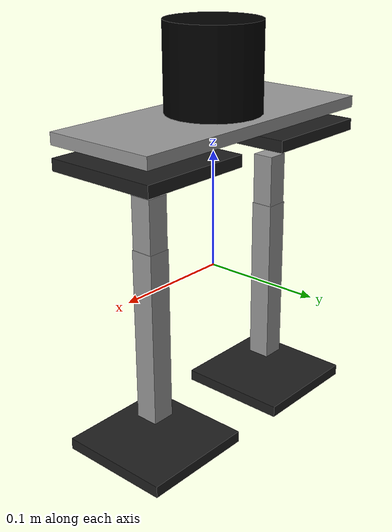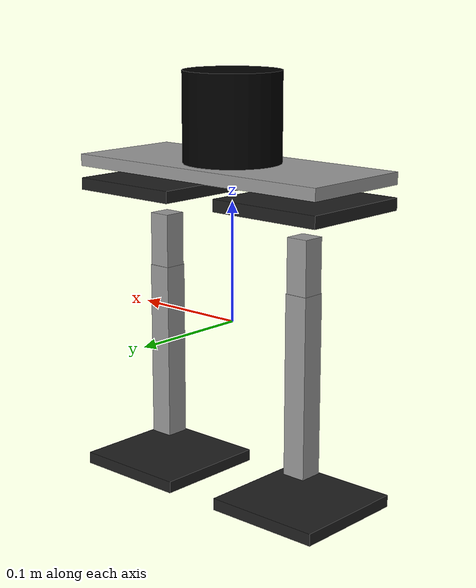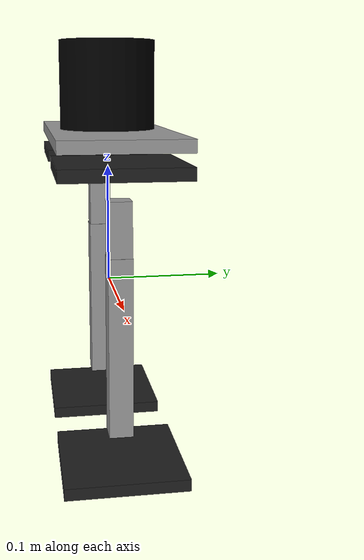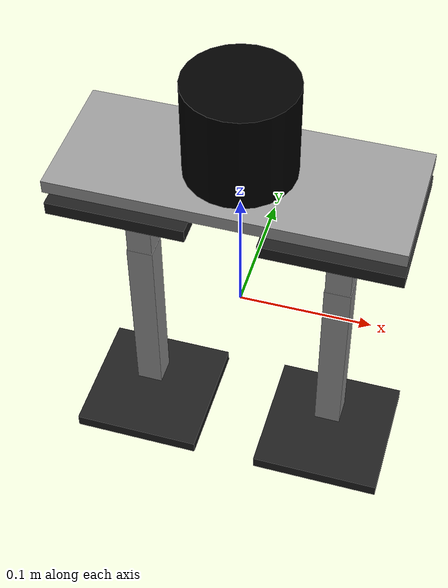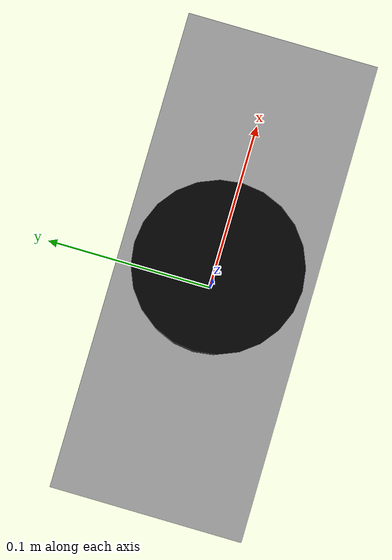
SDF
<?xml version='1.0'?>
<sdf version='1.7'>
  <model name='hyrecro_B_serial_ouster'>
    <link name='foot_A'>
      <inertial>
        <mass>1</mass>
        <inertia>
          <ixx>0.166667</ixx>
          <ixy>0</ixy>
          <ixz>0</ixz>
          <iyy>0.166667</iyy>
          <iyz>0</iyz>
          <izz>0.166667</izz>
        </inertia>
        <pose>0 0 0 0 -0 0</pose>
      </inertial>
      <pose>-0.075 -0 -0.138333 0 -0 0</pose>
      <gravity>1</gravity>
      <self_collide>0</self_collide>
      <kinematic>0</kinematic>
      <enable_wind>0</enable_wind>
      <visual name='visual'>
        <pose>0 0 0 0 -0 0</pose>
        <geometry>
          <box>
            <size>0.1 0.1 0.01</size>
          </box>
        </geometry>
        <material>
          <lighting>1</lighting>
          <script>
            <uri>file://media/materials/scripts/gazebo.material</uri>
            <name>Gazebo/Black</name>
          </script>
          <shader type='pixel'>
            <normal_map>__default__</normal_map>
          </shader>
          <ambient>0 0 0 1</ambient>
          <diffuse>0.7 0.7 0.7 1</diffuse>
          <specular>0.01 0.01 0.01 1</specular>
          <emissive>0 0 0 1</emissive>
        </material>
        <transparency>0</transparency>
        <cast_shadows>1</cast_shadows>
      </visual>
      <collision name='collision'>
        <laser_retro>0</laser_retro>
        <max_contacts>10</max_contacts>
        <pose>0 0 0 0 -0 0</pose>
        <geometry>
          <box>
            <size>0.1 0.1 0.01</size>
          </box>
        </geometry>
        <surface>
          <friction>
            <ode>
              <mu>1</mu>
              <mu2>1</mu2>
              <fdir1>0 0 0</fdir1>
              <slip1>0</slip1>
              <slip2>0</slip2>
            </ode>
            <torsional>
              <coefficient>1</coefficient>
              <patch_radius>0</patch_radius>
              <surface_radius>0</surface_radius>
              <use_patch_radius>1</use_patch_radius>
              <ode>
                <slip>0</slip>
              </ode>
            </torsional>
          </friction>
          <bounce>
            <restitution_coefficient>0</restitution_coefficient>
            <threshold>1e+06</threshold>
          </bounce>
          <contact>
            <collide_without_contact>0</collide_without_contact>
            <collide_without_contact_bitmask>1</collide_without_contact_bitmask>
            <collide_bitmask>1</collide_bitmask>
            <ode>
              <soft_cfm>0</soft_cfm>
              <soft_erp>0.2</soft_erp>
              <kp>1e+13</kp>
              <kd>1</kd>
              <max_vel>0.01</max_vel>
              <min_depth>0</min_depth>
            </ode>
            <bullet>
              <split_impulse>1</split_impulse>
              <split_impulse_penetration_threshold>-0.01</split_impulse_penetration_threshold>
              <soft_cfm>0</soft_cfm>
              <soft_erp>0.2</soft_erp>
              <kp>1e+13</kp>
              <kd>1</kd>
            </bullet>
          </contact>
        </surface>
      </collision>
    </link>
    <link name='foot_B'>
      <inertial>
        <mass>1</mass>
        <inertia>
          <ixx>0.166667</ixx>
          <ixy>0</ixy>
          <ixz>0</ixz>
          <iyy>0.166667</iyy>
          <iyz>0</iyz>
          <izz>0.166667</izz>
        </inertia>
        <pose>0 0 0 0 -0 0</pose>
      </inertial>
      <pose>0.075 0 -0.138333 0 -0 0</pose>
      <gravity>1</gravity>
      <self_collide>0</self_collide>
      <kinematic>0</kinematic>
      <enable_wind>0</enable_wind>
      <visual name='visual'>
        <pose>0 0 0 0 -0 0</pose>
        <geometry>
          <box>
            <size>0.1 0.1 0.01</size>
          </box>
        </geometry>
        <material>
          <lighting>1</lighting>
          <script>
            <uri>file://media/materials/scripts/gazebo.material</uri>
            <name>Gazebo/Black</name>
          </script>
          <shader type='pixel'>
            <normal_map>__default__</normal_map>
          </shader>
          <ambient>0.961 0.475 0 1</ambient>
          <diffuse>0.7 0.7 0.7 1</diffuse>
          <specular>0.01 0.01 0.01 1</specular>
          <emissive>0 0 0 1</emissive>
        </material>
        <transparency>0</transparency>
        <cast_shadows>1</cast_shadows>
      </visual>
      <collision name='collision'>
        <laser_retro>0</laser_retro>
        <max_contacts>10</max_contacts>
        <pose>0 0 0 0 -0 0</pose>
        <geometry>
          <box>
            <size>0.1 0.1 0.01</size>
          </box>
        </geometry>
        <surface>
          <friction>
            <ode>
              <mu>1</mu>
              <mu2>1</mu2>
              <fdir1>0 0 0</fdir1>
              <slip1>0</slip1>
              <slip2>0</slip2>
            </ode>
            <torsional>
              <coefficient>1</coefficient>
              <patch_radius>0</patch_radius>
              <surface_radius>0</surface_radius>
              <use_patch_radius>1</use_patch_radius>
              <ode>
                <slip>0</slip>
              </ode>
            </torsional>
          </friction>
          <bounce>
            <restitution_coefficient>0</restitution_coefficient>
            <threshold>1e+06</threshold>
          </bounce>
          <contact>
            <collide_without_contact>0</collide_without_contact>
            <collide_without_contact_bitmask>1</collide_without_contact_bitmask>
            <collide_bitmask>1</collide_bitmask>
            <ode>
              <soft_cfm>0</soft_cfm>
              <soft_erp>0.2</soft_erp>
              <kp>1e+13</kp>
              <kd>1</kd>
              <max_vel>0.01</max_vel>
              <min_depth>0</min_depth>
            </ode>
            <bullet>
              <split_impulse>1</split_impulse>
              <split_impulse_penetration_threshold>-0.01</split_impulse_penetration_threshold>
              <soft_cfm>0</soft_cfm>
              <soft_erp>0.2</soft_erp>
              <kp>1e+13</kp>
              <kd>1</kd>
            </bullet>
          </contact>
        </surface>
      </collision>
    </link>
    <link name='hip'>
      <inertial>
        <mass>1</mass>
        <inertia>
          <ixx>0.166667</ixx>
          <ixy>0</ixy>
          <ixz>0</ixz>
          <iyy>0.166667</iyy>
          <iyz>0</iyz>
          <izz>0.166667</izz>
        </inertia>
        <pose>0 0 0 0 -0 0</pose>
      </inertial>
      <pose>0 -0 0.126667 0 -0 0</pose>
      <gravity>1</gravity>
      <self_collide>0</self_collide>
      <kinematic>0</kinematic>
      <enable_wind>0</enable_wind>
      <visual name='visual'>
        <pose>0 0 0 0 -0 0</pose>
        <geometry>
          <box>
            <size>0.25 0.1 0.01</size>
          </box>
        </geometry>
        <material>
          <lighting>1</lighting>
          <script>
            <uri>file://media/materials/scripts/gazebo.material</uri>
            <name>Gazebo/Grey</name>
          </script>
          <shader type='pixel'>
            <normal_map>__default__</normal_map>
          </shader>
          <ambient>0.729 0.741 0.714 1</ambient>
          <diffuse>0.7 0.7 0.7 1</diffuse>
          <specular>0.01 0.01 0.01 1</specular>
          <emissive>0 0 0 1</emissive>
        </material>
        <transparency>0</transparency>
        <cast_shadows>1</cast_shadows>
      </visual>
      <collision name='collision'>
        <laser_retro>0</laser_retro>
        <max_contacts>10</max_contacts>
        <pose>0 0 0 0 -0 0</pose>
        <geometry>
          <box>
            <size>0.25 0.1 0.01</size>
          </box>
        </geometry>
        <surface>
          <friction>
            <ode>
              <mu>1</mu>
              <mu2>1</mu2>
              <fdir1>0 0 0</fdir1>
              <slip1>0</slip1>
              <slip2>0</slip2>
            </ode>
            <torsional>
              <coefficient>1</coefficient>
              <patch_radius>0</patch_radius>
              <surface_radius>0</surface_radius>
              <use_patch_radius>1</use_patch_radius>
              <ode>
                <slip>0</slip>
              </ode>
            </torsional>
          </friction>
          <bounce>
            <restitution_coefficient>0</restitution_coefficient>
            <threshold>1e+06</threshold>
          </bounce>
          <contact>
            <collide_without_contact>0</collide_without_contact>
            <collide_without_contact_bitmask>1</collide_without_contact_bitmask>
            <collide_bitmask>1</collide_bitmask>
            <ode>
              <soft_cfm>0</soft_cfm>
              <soft_erp>0.2</soft_erp>
              <kp>1e+13</kp>
              <kd>1</kd>
              <max_vel>0.01</max_vel>
              <min_depth>0</min_depth>
            </ode>
            <bullet>
              <split_impulse>1</split_impulse>
              <split_impulse_penetration_threshold>-0.01</split_impulse_penetration_threshold>
              <soft_cfm>0</soft_cfm>
              <soft_erp>0.2</soft_erp>
              <kp>1e+13</kp>
              <kd>1</kd>
            </bullet>
          </contact>
        </surface>
      </collision>
    </link>
    <link name='hip_A'>
      <inertial>
        <mass>1</mass>
        <inertia>
          <ixx>0.166667</ixx>
          <ixy>0</ixy>
          <ixz>0</ixz>
          <iyy>0.166667</iyy>
          <iyz>0</iyz>
          <izz>0.166667</izz>
        </inertia>
        <pose>0 0 0 0 -0 0</pose>
      </inertial>
      <pose>-0.075 0 0.106667 0 -0 0</pose>
      <gravity>1</gravity>
      <self_collide>0</self_collide>
      <kinematic>0</kinematic>
      <enable_wind>0</enable_wind>
      <visual name='visual'>
        <pose>0 0 0 0 -0 0</pose>
        <geometry>
          <box>
            <size>0.1 0.1 0.01</size>
          </box>
        </geometry>
        <material>
          <lighting>1</lighting>
          <script>
            <uri>file://media/materials/scripts/gazebo.material</uri>
            <name>Gazebo/Black</name>
          </script>
          <shader type='pixel'>
            <normal_map>__default__</normal_map>
          </shader>
          <ambient>0 0 0 1</ambient>
          <diffuse>0.7 0.7 0.7 1</diffuse>
          <specular>0.01 0.01 0.01 1</specular>
          <emissive>0 0 0 1</emissive>
        </material>
        <transparency>0</transparency>
        <cast_shadows>1</cast_shadows>
      </visual>
      <collision name='collision'>
        <laser_retro>0</laser_retro>
        <max_contacts>10</max_contacts>
        <pose>0 0 0 0 -0 0</pose>
        <geometry>
          <box>
            <size>0.1 0.1 0.01</size>
          </box>
        </geometry>
        <surface>
          <friction>
            <ode>
              <mu>1</mu>
              <mu2>1</mu2>
              <fdir1>0 0 0</fdir1>
              <slip1>0</slip1>
              <slip2>0</slip2>
            </ode>
            <torsional>
              <coefficient>1</coefficient>
              <patch_radius>0</patch_radius>
              <surface_radius>0</surface_radius>
              <use_patch_radius>1</use_patch_radius>
              <ode>
                <slip>0</slip>
              </ode>
            </torsional>
          </friction>
          <bounce>
            <restitution_coefficient>0</restitution_coefficient>
            <threshold>1e+06</threshold>
          </bounce>
          <contact>
            <collide_without_contact>0</collide_without_contact>
            <collide_without_contact_bitmask>1</collide_without_contact_bitmask>
            <collide_bitmask>1</collide_bitmask>
            <ode>
              <soft_cfm>0</soft_cfm>
              <soft_erp>0.2</soft_erp>
              <kp>1e+13</kp>
              <kd>1</kd>
              <max_vel>0.01</max_vel>
              <min_depth>0</min_depth>
            </ode>
            <bullet>
              <split_impulse>1</split_impulse>
              <split_impulse_penetration_threshold>-0.01</split_impulse_penetration_threshold>
              <soft_cfm>0</soft_cfm>
              <soft_erp>0.2</soft_erp>
              <kp>1e+13</kp>
              <kd>1</kd>
            </bullet>
          </contact>
        </surface>
      </collision>
    </link>
    <link name='hip_B'>
      <inertial>
        <mass>1</mass>
        <inertia>
          <ixx>0.166667</ixx>
          <ixy>0</ixy>
          <ixz>0</ixz>
          <iyy>0.166667</iyy>
          <iyz>0</iyz>
          <izz>0.166667</izz>
        </inertia>
        <pose>0 0 0 0 -0 0</pose>
      </inertial>
      <pose>0.075 0 0.106667 0 -0 0</pose>
      <gravity>1</gravity>
      <self_collide>0</self_collide>
      <kinematic>0</kinematic>
      <enable_wind>0</enable_wind>
      <visual name='visual'>
        <pose>0 0 0 0 -0 0</pose>
        <geometry>
          <box>
            <size>0.1 0.1 0.01</size>
          </box>
        </geometry>
        <material>
          <lighting>1</lighting>
          <script>
            <uri>file://media/materials/scripts/gazebo.material</uri>
            <name>Gazebo/Black</name>
          </script>
          <shader type='pixel'>
            <normal_map>__default__</normal_map>
          </shader>
          <ambient>0 0 0 1</ambient>
          <diffuse>0.7 0.7 0.7 1</diffuse>
          <specular>0.01 0.01 0.01 1</specular>
          <emissive>0 0 0 1</emissive>
        </material>
        <transparency>0</transparency>
        <cast_shadows>1</cast_shadows>
      </visual>
      <collision name='collision'>
        <laser_retro>0</laser_retro>
        <max_contacts>10</max_contacts>
        <pose>0 0 0 0 -0 0</pose>
        <geometry>
          <box>
            <size>0.1 0.1 0.01</size>
          </box>
        </geometry>
        <surface>
          <friction>
            <ode>
              <mu>1</mu>
              <mu2>1</mu2>
              <fdir1>0 0 0</fdir1>
              <slip1>0</slip1>
              <slip2>0</slip2>
            </ode>
            <torsional>
              <coefficient>1</coefficient>
              <patch_radius>0</patch_radius>
              <surface_radius>0</surface_radius>
              <use_patch_radius>1</use_patch_radius>
              <ode>
                <slip>0</slip>
              </ode>
            </torsional>
          </friction>
          <bounce>
            <restitution_coefficient>0</restitution_coefficient>
            <threshold>1e+06</threshold>
          </bounce>
          <contact>
            <collide_without_contact>0</collide_without_contact>
            <collide_without_contact_bitmask>1</collide_without_contact_bitmask>
            <collide_bitmask>1</collide_bitmask>
            <ode>
              <soft_cfm>0</soft_cfm>
              <soft_erp>0.2</soft_erp>
              <kp>1e+13</kp>
              <kd>1</kd>
              <max_vel>0.01</max_vel>
              <min_depth>0</min_depth>
            </ode>
            <bullet>
              <split_impulse>1</split_impulse>
              <split_impulse_penetration_threshold>-0.01</split_impulse_penetration_threshold>
              <soft_cfm>0</soft_cfm>
              <soft_erp>0.2</soft_erp>
              <kp>1e+13</kp>
              <kd>1</kd>
            </bullet>
          </contact>
        </surface>
      </collision>
    </link>
    <link name='pist_1A'>
      <inertial>
        <mass>1</mass>
        <inertia>
          <ixx>0.166667</ixx>
          <ixy>0</ixy>
          <ixz>0</ixz>
          <iyy>0.166667</iyy>
          <iyz>0</iyz>
          <izz>0.166667</izz>
        </inertia>
        <pose>0 0 0 0 -0 0</pose>
      </inertial>
      <pose>-0.075 0 0.006667 0 -0 0</pose>
      <gravity>1</gravity>
      <self_collide>0</self_collide>
      <kinematic>0</kinematic>
      <enable_wind>0</enable_wind>
      <visual name='visual'>
        <pose>0 0 0 0 -0 0</pose>
        <geometry>
          <box>
            <size>0.019 0.019 0.15</size>
          </box>
        </geometry>
        <material>
          <lighting>1</lighting>
          <script>
            <uri>file://media/materials/scripts/gazebo.material</uri>
            <name>Gazebo/Grey</name>
          </script>
          <shader type='pixel'>
            <normal_map>__default__</normal_map>
          </shader>
          <ambient>0.729 0.741 0.714 1</ambient>
          <diffuse>0.7 0.7 0.7 1</diffuse>
          <specular>0.01 0.01 0.01 1</specular>
          <emissive>0 0 0 1</emissive>
        </material>
        <transparency>0</transparency>
        <cast_shadows>1</cast_shadows>
      </visual>
      <collision name='collision'>
        <laser_retro>0</laser_retro>
        <max_contacts>10</max_contacts>
        <pose>0 0 0 0 -0 0</pose>
        <geometry>
          <box>
            <size>0.019 0.019 0.15</size>
          </box>
        </geometry>
        <surface>
          <friction>
            <ode>
              <mu>1</mu>
              <mu2>1</mu2>
              <fdir1>0 0 0</fdir1>
              <slip1>0</slip1>
              <slip2>0</slip2>
            </ode>
            <torsional>
              <coefficient>1</coefficient>
              <patch_radius>0</patch_radius>
              <surface_radius>0</surface_radius>
              <use_patch_radius>1</use_patch_radius>
              <ode>
                <slip>0</slip>
              </ode>
            </torsional>
          </friction>
          <bounce>
            <restitution_coefficient>0</restitution_coefficient>
            <threshold>1e+06</threshold>
          </bounce>
          <contact>
            <collide_without_contact>0</collide_without_contact>
            <collide_without_contact_bitmask>1</collide_without_contact_bitmask>
            <collide_bitmask>1</collide_bitmask>
            <ode>
              <soft_cfm>0</soft_cfm>
              <soft_erp>0.2</soft_erp>
              <kp>1e+13</kp>
              <kd>1</kd>
              <max_vel>0.01</max_vel>
              <min_depth>0</min_depth>
            </ode>
            <bullet>
              <split_impulse>1</split_impulse>
              <split_impulse_penetration_threshold>-0.01</split_impulse_penetration_threshold>
              <soft_cfm>0</soft_cfm>
              <soft_erp>0.2</soft_erp>
              <kp>1e+13</kp>
              <kd>1</kd>
            </bullet>
          </contact>
        </surface>
      </collision>
    </link>
    <link name='pist_1B'>
      <inertial>
        <mass>1</mass>
        <inertia>
          <ixx>0.166667</ixx>
          <ixy>0</ixy>
          <ixz>0</ixz>
          <iyy>0.166667</iyy>
          <iyz>0</iyz>
          <izz>0.166667</izz>
        </inertia>
        <pose>0 0 0 0 -0 0</pose>
      </inertial>
      <pose>0.075 0 0.006667 0 -0 0</pose>
      <gravity>1</gravity>
      <self_collide>0</self_collide>
      <kinematic>0</kinematic>
      <enable_wind>0</enable_wind>
      <visual name='visual'>
        <pose>0 0 0 0 -0 0</pose>
        <geometry>
          <box>
            <size>0.019 0.019 0.15</size>
          </box>
        </geometry>
        <material>
          <lighting>1</lighting>
          <script>
            <uri>file://media/materials/scripts/gazebo.material</uri>
            <name>Gazebo/Grey</name>
          </script>
          <shader type='pixel'>
            <normal_map>__default__</normal_map>
          </shader>
          <ambient>0.729 0.741 0.714 1</ambient>
          <diffuse>0.7 0.7 0.7 1</diffuse>
          <specular>0.01 0.01 0.01 1</specular>
          <emissive>0 0 0 1</emissive>
        </material>
        <transparency>0</transparency>
        <cast_shadows>1</cast_shadows>
      </visual>
      <collision name='collision'>
        <laser_retro>0</laser_retro>
        <max_contacts>10</max_contacts>
        <pose>0 0 0 0 -0 0</pose>
        <geometry>
          <box>
            <size>0.019 0.019 0.15</size>
          </box>
        </geometry>
        <surface>
          <friction>
            <ode>
              <mu>1</mu>
              <mu2>1</mu2>
              <fdir1>0 0 0</fdir1>
              <slip1>0</slip1>
              <slip2>0</slip2>
            </ode>
            <torsional>
              <coefficient>1</coefficient>
              <patch_radius>0</patch_radius>
              <surface_radius>0</surface_radius>
              <use_patch_radius>1</use_patch_radius>
              <ode>
                <slip>0</slip>
              </ode>
            </torsional>
          </friction>
          <bounce>
            <restitution_coefficient>0</restitution_coefficient>
            <threshold>1e+06</threshold>
          </bounce>
          <contact>
            <collide_without_contact>0</collide_without_contact>
            <collide_without_contact_bitmask>1</collide_without_contact_bitmask>
            <collide_bitmask>1</collide_bitmask>
            <ode>
              <soft_cfm>0</soft_cfm>
              <soft_erp>0.2</soft_erp>
              <kp>1e+13</kp>
              <kd>1</kd>
              <max_vel>0.01</max_vel>
              <min_depth>0</min_depth>
            </ode>
            <bullet>
              <split_impulse>1</split_impulse>
              <split_impulse_penetration_threshold>-0.01</split_impulse_penetration_threshold>
              <soft_cfm>0</soft_cfm>
              <soft_erp>0.2</soft_erp>
              <kp>1e+13</kp>
              <kd>1</kd>
            </bullet>
          </contact>
        </surface>
      </collision>
    </link>
    <link name='pist_2A'>
      <inertial>
        <mass>1</mass>
        <inertia>
          <ixx>0.166667</ixx>
          <ixy>0</ixy>
          <ixz>0</ixz>
          <iyy>0.166667</iyy>
          <iyz>0</iyz>
          <izz>0.166667</izz>
        </inertia>
        <pose>0 0 0 0 -0 0</pose>
      </inertial>
      <pose>-0.075 -0 -0.038333 0 -0 0</pose>
      <gravity>1</gravity>
      <self_collide>0</self_collide>
      <kinematic>0</kinematic>
      <enable_wind>0</enable_wind>
      <visual name='visual'>
        <pose>0 0 0 0 -0 0</pose>
        <geometry>
          <box>
            <size>0.02 0.02 0.15</size>
          </box>
        </geometry>
        <material>
          <lighting>1</lighting>
          <script>
            <uri>file://media/materials/scripts/gazebo.material</uri>
            <name>Gazebo/Grey</name>
          </script>
          <shader type='pixel'>
            <normal_map>__default__</normal_map>
          </shader>
          <ambient>0 0 0 1</ambient>
          <diffuse>0.7 0.7 0.7 1</diffuse>
          <specular>0.01 0.01 0.01 1</specular>
          <emissive>0 0 0 1</emissive>
        </material>
        <transparency>0</transparency>
        <cast_shadows>1</cast_shadows>
      </visual>
      <collision name='collision'>
        <laser_retro>0</laser_retro>
        <max_contacts>10</max_contacts>
        <pose>0 0 0 0 -0 0</pose>
        <geometry>
          <box>
            <size>0.02 0.02 0.15</size>
          </box>
        </geometry>
        <surface>
          <friction>
            <ode>
              <mu>1</mu>
              <mu2>1</mu2>
              <fdir1>0 0 0</fdir1>
              <slip1>0</slip1>
              <slip2>0</slip2>
            </ode>
            <torsional>
              <coefficient>1</coefficient>
              <patch_radius>0</patch_radius>
              <surface_radius>0</surface_radius>
              <use_patch_radius>1</use_patch_radius>
              <ode>
                <slip>0</slip>
              </ode>
            </torsional>
          </friction>
          <bounce>
            <restitution_coefficient>0</restitution_coefficient>
            <threshold>1e+06</threshold>
          </bounce>
          <contact>
            <collide_without_contact>0</collide_without_contact>
            <collide_without_contact_bitmask>1</collide_without_contact_bitmask>
            <collide_bitmask>1</collide_bitmask>
            <ode>
              <soft_cfm>0</soft_cfm>
              <soft_erp>0.2</soft_erp>
              <kp>1e+13</kp>
              <kd>1</kd>
              <max_vel>0.01</max_vel>
              <min_depth>0</min_depth>
            </ode>
            <bullet>
              <split_impulse>1</split_impulse>
              <split_impulse_penetration_threshold>-0.01</split_impulse_penetration_threshold>
              <soft_cfm>0</soft_cfm>
              <soft_erp>0.2</soft_erp>
              <kp>1e+13</kp>
              <kd>1</kd>
            </bullet>
          </contact>
        </surface>
      </collision>
    </link>
    <link name='pist_2B'>
      <inertial>
        <mass>1</mass>
        <inertia>
          <ixx>0.166667</ixx>
          <ixy>0</ixy>
          <ixz>0</ixz>
          <iyy>0.166667</iyy>
          <iyz>0</iyz>
          <izz>0.166667</izz>
        </inertia>
        <pose>0 0 0 0 -0 0</pose>
      </inertial>
      <pose>0.075 -0 -0.038333 0 -0 0</pose>
      <gravity>1</gravity>
      <self_collide>0</self_collide>
      <kinematic>0</kinematic>
      <enable_wind>0</enable_wind>
      <visual name='visual'>
        <pose>0 0 0 0 -0 0</pose>
        <geometry>
          <box>
            <size>0.02 0.02 0.15</size>
          </box>
        </geometry>
        <material>
          <lighting>1</lighting>
          <script>
            <uri>file://media/materials/scripts/gazebo.material</uri>
            <name>Gazebo/Grey</name>
          </script>
          <shader type='pixel'>
            <normal_map>__default__</normal_map>
          </shader>
          <ambient>0 0 0 1</ambient>
          <diffuse>0.7 0.7 0.7 1</diffuse>
          <specular>0.01 0.01 0.01 1</specular>
          <emissive>0 0 0 1</emissive>
        </material>
        <transparency>0</transparency>
        <cast_shadows>1</cast_shadows>
      </visual>
      <collision name='collision'>
        <laser_retro>0</laser_retro>
        <max_contacts>10</max_contacts>
        <pose>0 0 0 0 -0 0</pose>
        <geometry>
          <box>
            <size>0.02 0.02 0.15</size>
          </box>
        </geometry>
        <surface>
          <friction>
            <ode>
              <mu>1</mu>
              <mu2>1</mu2>
              <fdir1>0 0 0</fdir1>
              <slip1>0</slip1>
              <slip2>0</slip2>
            </ode>
            <torsional>
              <coefficient>1</coefficient>
              <patch_radius>0</patch_radius>
              <surface_radius>0</surface_radius>
              <use_patch_radius>1</use_patch_radius>
              <ode>
                <slip>0</slip>
              </ode>
            </torsional>
          </friction>
          <bounce>
            <restitution_coefficient>0</restitution_coefficient>
            <threshold>1e+06</threshold>
          </bounce>
          <contact>
            <collide_without_contact>0</collide_without_contact>
            <collide_without_contact_bitmask>1</collide_without_contact_bitmask>
            <collide_bitmask>1</collide_bitmask>
            <ode>
              <soft_cfm>0</soft_cfm>
              <soft_erp>0.2</soft_erp>
              <kp>1e+13</kp>
              <kd>1</kd>
              <max_vel>0.01</max_vel>
              <min_depth>0</min_depth>
            </ode>
            <bullet>
              <split_impulse>1</split_impulse>
              <split_impulse_penetration_threshold>-0.01</split_impulse_penetration_threshold>
              <soft_cfm>0</soft_cfm>
              <soft_erp>0.2</soft_erp>
              <kp>1e+13</kp>
              <kd>1</kd>
            </bullet>
          </contact>
        </surface>
      </collision>
    </link>
    <link name='os1_sensor'>
      <inertial>
        <pose>0 0 0 0 -0 0</pose>
        <mass>0.33</mass>
        <inertia>
          <ixx>0.00024115</ixx>
          <ixy>0</ixy>
          <ixz>0</ixz>
          <iyy>0.00024115</iyy>
          <iyz>0</iyz>
          <izz>0.000264</izz>
        </inertia>
      </inertial>
      <sensor name='os1_sensor-OS1-128' type='gpu_ray'>
        <pose>0 0 0.05 0 -0 0</pose>
        <visualize>0</visualize>
        <update_rate>10</update_rate>
        <ray>
          <scan>
            <horizontal>
              <samples>512</samples>
              <resolution>1</resolution>
              <min_angle>-3.14159</min_angle>
              <max_angle>3.14159</max_angle>
            </horizontal>
            <vertical>
              <samples>128</samples>
              <resolution>1</resolution>
              <min_angle>-0.3979</min_angle>
              <max_angle>0.3979</max_angle>
            </vertical>
          </scan>
          <range>
            <min>0.2</min>
            <max>10</max>
            <resolution>0.03</resolution>
          </range>
        </ray>
        <plugin name='gazebo_ros_laser_controller' filename='libgazebo_ros_ouster_gpu_laser.so'>
          <topicName>/os1/pointCloud</topicName>
          <frameName>os1_sensor</frameName>
          <min_range>0.2</min_range>
          <max_range>10.0</max_range>
          <gaussianNoise>0.008</gaussianNoise>
          <robotNamespace>/modelB</robotNamespace>
        </plugin>
      </sensor>
      <self_collide>0</self_collide>
      <enable_wind>0</enable_wind>
      <kinematic>0</kinematic>
      <pose>0 0 0.168167 0 -0 0</pose>
      <gravity>1</gravity>
      <visual name='os1_sensor_fixed_joint_lump__base_visual_visual'>
        <pose>0 0 0 0 -0 0</pose>
        <geometry>
          <cylinder>
            <length>0.073</length>
            <radius>0.04</radius>
          </cylinder>
        </geometry>
        <material>
          <shader type='pixel'>
            <normal_map>__default__</normal_map>
          </shader>
          <script>
            <name>ModelPreview_1::os1_sensor::os1_sensor_fixed_joint_lump__base_visual_visual_MATERIAL_</name>
          </script>
          <ambient>0 0 0 1</ambient>
          <diffuse>0 0 0 1</diffuse>
          <specular>0 0 0 1</specular>
          <emissive>0 0 0 1</emissive>
        </material>
        <transparency>0</transparency>
        <cast_shadows>1</cast_shadows>
      </visual>
      <collision name='os1_sensor_fixed_joint_lump__base_collision_collision'>
        <laser_retro>0</laser_retro>
        <max_contacts>10</max_contacts>
        <pose>0 0 0 0 -0 0</pose>
        <geometry>
          <cylinder>
            <radius>0.04</radius>
            <length>0.073</length>
          </cylinder>
        </geometry>
        <surface>
          <friction>
            <ode>
              <mu>1</mu>
              <mu2>1</mu2>
              <fdir1>0 0 0</fdir1>
              <slip1>0</slip1>
              <slip2>0</slip2>
            </ode>
            <torsional>
              <coefficient>1</coefficient>
              <patch_radius>0</patch_radius>
              <surface_radius>0</surface_radius>
              <use_patch_radius>1</use_patch_radius>
              <ode>
                <slip>0</slip>
              </ode>
            </torsional>
          </friction>
          <bounce>
            <restitution_coefficient>0</restitution_coefficient>
            <threshold>1e+06</threshold>
          </bounce>
          <contact>
            <collide_without_contact>0</collide_without_contact>
            <collide_without_contact_bitmask>1</collide_without_contact_bitmask>
            <collide_bitmask>1</collide_bitmask>
            <ode>
              <soft_cfm>0</soft_cfm>
              <soft_erp>0.2</soft_erp>
              <kp>1e+13</kp>
              <kd>1</kd>
              <max_vel>0.01</max_vel>
              <min_depth>0</min_depth>
            </ode>
            <bullet>
              <split_impulse>1</split_impulse>
              <split_impulse_penetration_threshold>-0.01</split_impulse_penetration_threshold>
              <soft_cfm>0</soft_cfm>
              <soft_erp>0.2</soft_erp>
              <kp>1e+13</kp>
              <kd>1</kd>
            </bullet>
          </contact>
        </surface>
      </collision>
    </link>
    <joint name='q1' type='revolute'>
      <parent>pist_2A</parent>
      <child>foot_A</child>
      <pose>0 0 0.025 1.57079 -0 0</pose>
      <axis>
        <xyz>0 0 1</xyz>
        <limit>
          <lower>-1.79769e+308</lower>
          <upper>1.79769e+308</upper>
          <effort>-1</effort>
          <velocity>-1</velocity>
        </limit>
        <dynamics>
          <spring_reference>0</spring_reference>
          <spring_stiffness>0</spring_stiffness>
          <damping>0</damping>
          <friction>0</friction>
        </dynamics>
      </axis>
      <physics>
        <ode>
          <limit>
            <cfm>0</cfm>
            <erp>0.2</erp>
          </limit>
          <suspension>
            <cfm>0</cfm>
            <erp>0.2</erp>
          </suspension>
        </ode>
      </physics>
    </joint>
    <joint name='q2' type='prismatic'>
      <parent>pist_1A</parent>
      <child>pist_2A</child>
      <pose>0 0 -0.03 0 -0 0</pose>
      <axis>
        <xyz>0 0 1</xyz>
        <limit>
          <lower>-1.79769e+308</lower>
          <upper>1.79769e+308</upper>
          <effort>-1</effort>
          <velocity>-1</velocity>
        </limit>
        <dynamics>
          <spring_reference>0</spring_reference>
          <spring_stiffness>0</spring_stiffness>
          <damping>0</damping>
          <friction>0</friction>
        </dynamics>
      </axis>
      <physics>
        <ode>
          <limit>
            <cfm>0</cfm>
            <erp>0.2</erp>
          </limit>
          <suspension>
            <cfm>0</cfm>
            <erp>0.2</erp>
          </suspension>
        </ode>
      </physics>
    </joint>
    <joint name='q3' type='revolute'>
      <parent>hip_A</parent>
      <child>pist_1A</child>
      <pose>0 0 0.075 1.57079 -0 0</pose>
      <axis>
        <xyz>0 0 1</xyz>
        <limit>
          <lower>-1.79769e+308</lower>
          <upper>1.79769e+308</upper>
          <effort>-1</effort>
          <velocity>-1</velocity>
        </limit>
        <dynamics>
          <spring_reference>0</spring_reference>
          <spring_stiffness>0</spring_stiffness>
          <damping>0</damping>
          <friction>0</friction>
        </dynamics>
      </axis>
      <physics>
        <ode>
          <limit>
            <cfm>0</cfm>
            <erp>0.2</erp>
          </limit>
          <suspension>
            <cfm>0</cfm>
            <erp>0.2</erp>
          </suspension>
        </ode>
      </physics>
    </joint>
    <joint name='q4' type='revolute'>
      <parent>hip</parent>
      <child>hip_A</child>
      <pose>0 0 0.02 0 -0 0</pose>
      <axis>
        <xyz>0 0 1</xyz>
        <limit>
          <lower>-1.79769e+308</lower>
          <upper>1.79769e+308</upper>
          <effort>-1</effort>
          <velocity>-1</velocity>
        </limit>
        <dynamics>
          <spring_reference>0</spring_reference>
          <spring_stiffness>0</spring_stiffness>
          <damping>0</damping>
          <friction>0</friction>
        </dynamics>
      </axis>
      <physics>
        <ode>
          <limit>
            <cfm>0</cfm>
            <erp>0.2</erp>
          </limit>
          <suspension>
            <cfm>0</cfm>
            <erp>0.2</erp>
          </suspension>
        </ode>
      </physics>
    </joint>
    <joint name='q5' type='revolute'>
      <parent>hip_B</parent>
      <child>hip</child>
      <pose>0.075 0 0 0 -0 0</pose>
      <axis>
        <xyz>0 0 1</xyz>
        <limit>
          <lower>-1.79769e+308</lower>
          <upper>1.79769e+308</upper>
          <effort>-1</effort>
          <velocity>-1</velocity>
        </limit>
        <dynamics>
          <spring_reference>0</spring_reference>
          <spring_stiffness>0</spring_stiffness>
          <damping>0</damping>
          <friction>0</friction>
        </dynamics>
      </axis>
      <physics>
        <ode>
          <limit>
            <cfm>0</cfm>
            <erp>0.2</erp>
          </limit>
          <suspension>
            <cfm>0</cfm>
            <erp>0.2</erp>
          </suspension>
        </ode>
      </physics>
    </joint>
    <joint name='q6' type='revolute'>
      <parent>pist_1B</parent>
      <child>hip_B</child>
      <pose>0 0 -0.025 1.57079 -0 0</pose>
      <axis>
        <xyz>0 0 1</xyz>
        <limit>
          <lower>-1.79769e+308</lower>
          <upper>1.79769e+308</upper>
          <effort>-1</effort>
          <velocity>-1</velocity>
        </limit>
        <dynamics>
          <spring_reference>0</spring_reference>
          <spring_stiffness>0</spring_stiffness>
          <damping>0</damping>
          <friction>0</friction>
        </dynamics>
      </axis>
      <physics>
        <ode>
          <limit>
            <cfm>0</cfm>
            <erp>0.2</erp>
          </limit>
          <suspension>
            <cfm>0</cfm>
            <erp>0.2</erp>
          </suspension>
        </ode>
      </physics>
    </joint>
    <joint name='q7' type='prismatic'>
      <parent>pist_2B</parent>
      <child>pist_1B</child>
      <pose>0 0 -0.075 0 -0 0</pose>
      <axis>
        <xyz>0 0 -1</xyz>
        <limit>
          <lower>-1.79769e+308</lower>
          <upper>1.79769e+308</upper>
          <effort>-1</effort>
          <velocity>-1</velocity>
        </limit>
        <dynamics>
          <spring_reference>0</spring_reference>
          <spring_stiffness>0</spring_stiffness>
          <damping>0</damping>
          <friction>0</friction>
        </dynamics>
      </axis>
      <physics>
        <ode>
          <limit>
            <cfm>0</cfm>
            <erp>0.2</erp>
          </limit>
          <suspension>
            <cfm>0</cfm>
            <erp>0.2</erp>
          </suspension>
        </ode>
      </physics>
    </joint>
    <joint name='q8' type='revolute'>
      <parent>foot_B</parent>
      <child>pist_2B</child>
      <pose>0 0 -0.075 1.57079 -0 0</pose>
      <axis>
        <xyz>0 0 1</xyz>
        <limit>
          <lower>-1.79769e+308</lower>
          <upper>1.79769e+308</upper>
          <effort>-1</effort>
          <velocity>-1</velocity>
        </limit>
        <dynamics>
          <spring_reference>0</spring_reference>
          <spring_stiffness>0</spring_stiffness>
          <damping>0</damping>
          <friction>0</friction>
        </dynamics>
      </axis>
      <physics>
        <ode>
          <limit>
            <cfm>0</cfm>
            <erp>0.2</erp>
          </limit>
          <suspension>
            <cfm>0</cfm>
            <erp>0.2</erp>
          </suspension>
        </ode>
      </physics>
    </joint>
    <joint name='hip_os1_joint' type='fixed'>
      <parent>hip</parent>
      <child>os1_sensor</child>
      <pose>0 0 0 0 -0 0</pose>
      <physics>
        <ode>
          <limit>
            <cfm>0</cfm>
            <erp>0.2</erp>
          </limit>
          <suspension>
            <cfm>0</cfm>
            <erp>0.2</erp>
          </suspension>
        </ode>
      </physics>
    </joint>
    <static>0</static>
    <allow_auto_disable>1</allow_auto_disable>
  </model>
</sdf>
